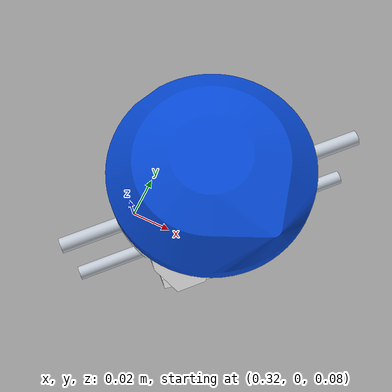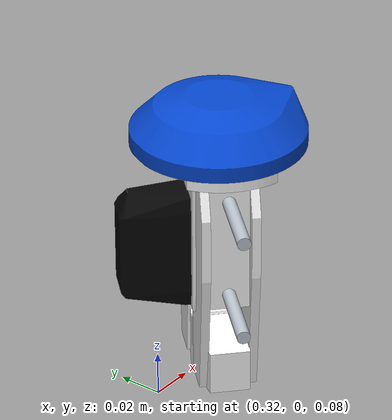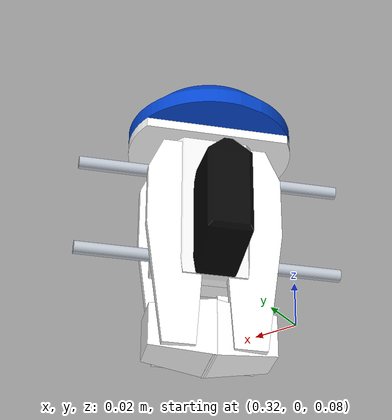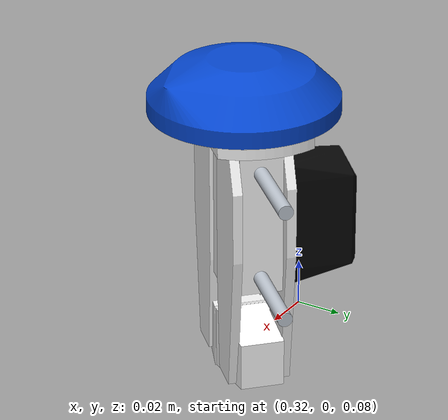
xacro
<?xml version="1.0"?>
<robot name="scara"
  xmlns:xacro="http://www.ros.org/wiki/xacro">
  <xacro:arg name="mode" default="mock"/>
  <xacro:arg name="description_share" default="$(find scara_description)"/>
  <xacro:arg name="controllers_file" default="$(find scara_bringup)/config/controllers.yaml"/>
  <xacro:property name="mode" value="$(arg mode)"/>
  <link name="world"/>
  <joint name="world_fixed" type="fixed">
    <parent link="world"/>
    <child link="base_link"/>
  </joint>
  <link name="base_link">

    <collision>
      <geometry>
        <mesh filename="file://$(arg description_share)/meshes/base_link_collision_000.stl"/>
      </geometry>
    </collision>
    <collision>
      <geometry>
        <mesh filename="file://$(arg description_share)/meshes/base_link_collision_001.stl"/>
      </geometry>
    </collision>
    <collision>
      <geometry>
        <mesh filename="file://$(arg description_share)/meshes/base_link_collision_081.stl"/>
      </geometry>
    </collision>
    <collision>
      <geometry>
        <mesh filename="file://$(arg description_share)/meshes/base_link_collision_082.stl"/>
      </geometry>
    </collision>
    <inertial>
      <origin xyz="-0.08500000000000003 2.0816681711721685e-16 0.03850000000000008"/>
      <mass value="1.5"/>
      <inertia ixx="0.0031911250000000797" ixy="0" ixz="0" iyy="0.011991125000000054" iyz="0" izz="0.013700000000000032"/>
    </inertial>
  </link>
  <link name="shoulder_link">

    <collision>
      <geometry>
        <mesh filename="file://$(arg description_share)/meshes/shoulder_link_collision_010.stl"/>
      </geometry>
    </collision>
    <collision>
      <geometry>
        <mesh filename="file://$(arg description_share)/meshes/shoulder_link_collision_011.stl"/>
      </geometry>
    </collision>
    <collision>
      <geometry>
        <mesh filename="file://$(arg description_share)/meshes/shoulder_link_collision_012.stl"/>
      </geometry>
    </collision>
    <collision>
      <geometry>
        <mesh filename="file://$(arg description_share)/meshes/shoulder_link_collision_013.stl"/>
      </geometry>
    </collision>
    <collision>
      <geometry>
        <mesh filename="file://$(arg description_share)/meshes/shoulder_link_collision_014.stl"/>
      </geometry>
    </collision>
    <collision>
      <geometry>
        <mesh filename="file://$(arg description_share)/meshes/shoulder_link_collision_015.stl"/>
      </geometry>
    </collision>
    <collision>
      <geometry>
        <mesh filename="file://$(arg description_share)/meshes/shoulder_link_collision_020.stl"/>
      </geometry>
    </collision>
    <collision>
      <geometry>
        <mesh filename="file://$(arg description_share)/meshes/shoulder_link_collision_027.stl"/>
      </geometry>
    </collision>
    <collision>
      <geometry>
        <mesh filename="file://$(arg description_share)/meshes/shoulder_link_collision_079.stl"/>
      </geometry>
    </collision>
    <collision>
      <geometry>
        <mesh filename="file://$(arg description_share)/meshes/shoulder_link_collision_080.stl"/>
      </geometry>
    </collision>
    <inertial>
      <origin xyz="-1.231653667943533e-15 -3.9170056087556304e-15 0.19100000000000006"/>
      <mass value="1.2"/>
      <inertia ixx="0.026640400000000355" ixy="0" ixz="0" iyy="0.02664040000000024" iyz="0" izz="0.0028800000000002227"/>
    </inertial>
  </link>
  <link name="arm1_link">

    <collision>
      <geometry>
        <mesh filename="file://$(arg description_share)/meshes/arm1_link_collision_028.stl"/>
      </geometry>
    </collision>
    <collision>
      <geometry>
        <mesh filename="file://$(arg description_share)/meshes/arm1_link_collision_029.stl"/>
      </geometry>
    </collision>
    <collision>
      <geometry>
        <mesh filename="file://$(arg description_share)/meshes/arm1_link_collision_038.stl"/>
      </geometry>
    </collision>
    <collision>
      <geometry>
        <mesh filename="file://$(arg description_share)/meshes/arm1_link_collision_077.stl"/>
      </geometry>
    </collision>
    <inertial>
      <origin xyz="0.10349999999999861 -4.524158825347513e-15 0.036500000000001614"/>
      <mass value="0.8"/>
      <inertia ixx="0.0015867303040828903" ixy="0" ixz="0" iyy="0.00775586666666669" iyz="0" izz="0.008088063637416243"/>
    </inertial>
  </link>
  <link name="arm2_link">

    <collision>
      <geometry>
        <mesh filename="file://$(arg description_share)/meshes/arm2_link_collision_032.stl"/>
      </geometry>
    </collision>
    <collision>
      <geometry>
        <mesh filename="file://$(arg description_share)/meshes/arm2_link_collision_045.stl"/>
      </geometry>
    </collision>
    <collision>
      <geometry>
        <mesh filename="file://$(arg description_share)/meshes/arm2_link_collision_046.stl"/>
      </geometry>
    </collision>
    <collision>
      <geometry>
        <mesh filename="file://$(arg description_share)/meshes/arm2_link_collision_048.stl"/>
      </geometry>
    </collision>
    <inertial>
      <origin xyz="0.07200000000000134 -3.629735401133871e-14 -0.006299999999999348"/>
      <mass value="0.45"/>
      <inertia ixx="0.0007103835000004254" ixy="0" ixz="0" iyy="0.002330383500000025" iyz="0" izz="0.002076300000000437"/>
    </inertial>
  </link>
  <link name="tool_link">
    <visual>
      <geometry>
        <mesh filename="file://$(arg description_share)/meshes/tool_link_collision_049.stl"/>
      </geometry>
      <material name="tool_link_white">
        <color rgba="0.02 0.28 0.82 1"/>
      </material>
    </visual>
    <visual>
      <geometry>
        <mesh filename="file://$(arg description_share)/meshes/tool_link_collision_058.stl"/>
      </geometry>
      <material name="tool_link_white_2">
        <color rgba="0.95 0.95 0.95 1"/>
      </material>
    </visual>
    <visual>
      <geometry>
        <mesh filename="file://$(arg description_share)/meshes/tool_link_collision_059.stl"/>
      </geometry>
      <material name="tool_link_white_3">
        <color rgba="0.02 0.02 0.02 1"/>
      </material>
    </visual>
    <collision>
      <geometry>
        <mesh filename="file://$(arg description_share)/meshes/tool_link_collision_049.stl"/>
      </geometry>
    </collision>
    <collision>
      <geometry>
        <mesh filename="file://$(arg description_share)/meshes/tool_link_collision_058.stl"/>
      </geometry>
    </collision>
    <collision>
      <geometry>
        <mesh filename="file://$(arg description_share)/meshes/tool_link_collision_059.stl"/>
      </geometry>
    </collision>
    <inertial>
      <origin xyz="2.949029909160572e-15 -5.304784389537076e-15 -0.03533070698027093"/>
      <mass value="0.35"/>
      <inertia ixx="0.0010352714832298565" ixy="0" ixz="0" iyy="0.0010119555516648687" iyz="0" izz="0.0005639303865941157"/>
    </inertial>
  </link>
  <joint name="shoulder_joint" type="revolute">
    <parent link="base_link"/>
    <child link="shoulder_link"/>
    <origin xyz="0 0 0.066"/>
    <axis xyz="0 0 1"/>
    <limit lower="-1.5707963267948966" upper="4.642575810304916" effort="20" velocity="2.4"/>
    <dynamics damping="0.1" friction="0.01"/>
  </joint>
  <joint name="z_joint" type="prismatic">
    <parent link="shoulder_link"/>
    <child link="arm1_link"/>
    <origin xyz="0 0 0.19761649586021549"/>
    <axis xyz="0 0 1"/>
    <limit lower="-0.05" upper="0.05" effort="150" velocity="0.16"/>
    <dynamics damping="0.1" friction="0.01"/>
  </joint>
  <joint name="elbow_joint" type="revolute">
    <parent link="arm1_link"/>
    <child link="arm2_link"/>
    <origin xyz="0.22799999999999893 0 -0.01899999999999869"/>
    <axis xyz="0 0 1"/>
    <limit lower="-2.6179938779914944" upper="2.6179938779914944" effort="20" velocity="3.0"/>
    <dynamics damping="0.1" friction="0.01"/>
  </joint>
  <joint name="wrist_joint" type="revolute">
    <parent link="arm2_link"/>
    <child link="tool_link"/>
    <origin xyz="0.13649999999995294 0 -0.0570000000000017"/>
    <axis xyz="0 0 1"/>
    <limit lower="-2.827433388230814" upper="2.827433388230814" effort="15" velocity="4.0"/>
    <dynamics damping="0.1" friction="0.01"/>
  </joint>
  <link name="tcp_link"/>
  <joint name="tcp_fixed" type="fixed">
    <parent link="tool_link"/>
    <child link="tcp_link"/>
    <origin xyz="0 0 -0.11506141396054323"/>
  </joint>
  <link name="gripper_base_link">
    <visual>
      <geometry>
        <mesh filename="file://$(arg description_share)/meshes/tool_link_collision_061.stl"/>
      </geometry>
      <material name="gripper_cad_white">
        <color rgba="1 1 1 1"/>
      </material>
    </visual>
    <visual>
      <geometry>
        <mesh filename="file://$(arg description_share)/meshes/tool_link_collision_063.stl"/>
      </geometry>
      <material name="gripper_cad_white_2">
        <color rgba="0.75 0.78 0.82 1"/>
      </material>
    </visual>
    <visual>
      <geometry>
        <mesh filename="file://$(arg description_share)/meshes/tool_link_collision_066.stl"/>
      </geometry>
      <material name="gripper_cad_white_3">
        <color rgba="0.75 0.78 0.82 1"/>
      </material>
    </visual>
    <visual>
      <geometry>
        <mesh filename="file://$(arg description_share)/meshes/tool_link_collision_076.stl"/>
      </geometry>
      <material name="gripper_cad_white_4">
        <color rgba="1 1 1 1"/>
      </material>
    </visual>
    <collision>
      <geometry>
        <mesh filename="file://$(arg description_share)/meshes/tool_link_collision_061.stl"/>
      </geometry>
    </collision>
    <collision>
      <geometry>
        <mesh filename="file://$(arg description_share)/meshes/tool_link_collision_063.stl"/>
      </geometry>
    </collision>
    <collision>
      <geometry>
        <mesh filename="file://$(arg description_share)/meshes/tool_link_collision_066.stl"/>
      </geometry>
    </collision>
    <collision>
      <geometry>
        <mesh filename="file://$(arg description_share)/meshes/tool_link_collision_076.stl"/>
      </geometry>
    </collision>
    <inertial>
      <mass value="0.10"/>
      <inertia ixx="0.000044" ixy="0" ixz="0" iyy="0.000023" iyz="0" izz="0.000061"/>
    </inertial>
  </link>
  <joint name="gripper_base_fixed" type="fixed">
    <parent link="tool_link"/>
    <child link="gripper_base_link"/>
    <origin xyz="0 0 0"/>
  </joint>

  <link name="left_finger_link">
    <visual>
      <origin xyz="0.032307 0.034136 0"/>
      <geometry>
        <mesh filename="file://$(arg description_share)/meshes/tool_link_collision_062.stl"/>
      </geometry>
      <material name="left_cad_white">
        <color rgba="1 1 1 1"/>
      </material>
    </visual>
    <visual>
      <origin xyz="0.032307 0.034136 0"/>
      <geometry>
        <mesh filename="file://$(arg description_share)/meshes/tool_link_collision_064.stl"/>
      </geometry>
      <material name="left_cad_white_2">
        <color rgba="1 1 1 1"/>
      </material>
    </visual>
    <visual>
      <origin xyz="0.032307 0.034136 0"/>
      <geometry>
        <mesh filename="file://$(arg description_share)/meshes/tool_link_collision_067.stl"/>
      </geometry>
      <material name="left_cad_white_3">
        <color rgba="1 1 1 1"/>
      </material>
    </visual>
    <visual>
      <origin xyz="0.032307 0.034136 0"/>
      <geometry>
        <mesh filename="file://$(arg description_share)/meshes/tool_link_collision_069.stl"/>
      </geometry>
      <material name="left_cad_white_4">
        <color rgba="1 1 1 1"/>
      </material>
    </visual>
    <collision>
      <origin xyz="0.032307 0.034136 0"/>
      <geometry>
        <mesh filename="file://$(arg description_share)/meshes/tool_link_collision_062.stl"/>
      </geometry>
    </collision>
    <collision>
      <origin xyz="0.032307 0.034136 0"/>
      <geometry>
        <mesh filename="file://$(arg description_share)/meshes/tool_link_collision_064.stl"/>
      </geometry>
    </collision>
    <collision>
      <origin xyz="0.032307 0.034136 0"/>
      <geometry>
        <mesh filename="file://$(arg description_share)/meshes/tool_link_collision_067.stl"/>
      </geometry>
    </collision>
    <collision>
      <origin xyz="0.032307 0.034136 0"/>
      <geometry>
        <mesh filename="file://$(arg description_share)/meshes/tool_link_collision_069.stl"/>
      </geometry>
    </collision>
    <inertial>
      <mass value="0.060"/>
      <inertia ixx="0.000020" ixy="0" ixz="0" iyy="0.000020" iyz="0" izz="0.000006"/>
    </inertial>
  </link>

  <link name="right_finger_link">
    <visual>
      <origin xyz="-0.032307 -0.034136 0"/>
      <geometry>
        <mesh filename="file://$(arg description_share)/meshes/tool_link_collision_065.stl"/>
      </geometry>
      <material name="right_cad_white">
        <color rgba="1 1 1 1"/>
      </material>
    </visual>
    <visual>
      <origin xyz="-0.032307 -0.034136 0"/>
      <geometry>
        <mesh filename="file://$(arg description_share)/meshes/tool_link_collision_068.stl"/>
      </geometry>
      <material name="right_cad_white_2">
        <color rgba="1 1 1 1"/>
      </material>
    </visual>
    <visual>
      <origin xyz="-0.032307 -0.034136 0"/>
      <geometry>
        <mesh filename="file://$(arg description_share)/meshes/tool_link_collision_070.stl"/>
      </geometry>
      <material name="right_cad_white_3">
        <color rgba="1 1 1 1"/>
      </material>
    </visual>
    <visual>
      <origin xyz="-0.032307 -0.034136 0"/>
      <geometry>
        <mesh filename="file://$(arg description_share)/meshes/tool_link_collision_071.stl"/>
      </geometry>
      <material name="right_cad_white_4">
        <color rgba="1 1 1 1"/>
      </material>
    </visual>
    <collision>
      <origin xyz="-0.032307 -0.034136 0"/>
      <geometry>
        <mesh filename="file://$(arg description_share)/meshes/tool_link_collision_065.stl"/>
      </geometry>
    </collision>
    <collision>
      <origin xyz="-0.032307 -0.034136 0"/>
      <geometry>
        <mesh filename="file://$(arg description_share)/meshes/tool_link_collision_068.stl"/>
      </geometry>
    </collision>
    <collision>
      <origin xyz="-0.032307 -0.034136 0"/>
      <geometry>
        <mesh filename="file://$(arg description_share)/meshes/tool_link_collision_070.stl"/>
      </geometry>
    </collision>
    <collision>
      <origin xyz="-0.032307 -0.034136 0"/>
      <geometry>
        <mesh filename="file://$(arg description_share)/meshes/tool_link_collision_071.stl"/>
      </geometry>
    </collision>
    <inertial>
      <mass value="0.060"/>
      <inertia ixx="0.000020" ixy="0" ixz="0" iyy="0.000020" iyz="0" izz="0.000006"/>
    </inertial>
  </link>

  <joint name="left_finger_joint" type="prismatic">
    <parent link="gripper_base_link"/>
    <child link="left_finger_link"/>
    <origin xyz="-0.015122 -0.015979 0"/>
    <axis xyz="-0.687379 -0.726299 0"/>
    <limit lower="0" upper="0.025" effort="40" velocity="0.16"/>
    <dynamics damping="0.2" friction="0.02"/>
  </joint>
  <joint name="right_finger_joint" type="prismatic">
    <parent link="gripper_base_link"/>
    <child link="right_finger_link"/>
    <origin xyz="0.015122 0.015979 0"/>
    <axis xyz="0.687379 0.726299 0"/>
    <limit lower="0" upper="0.025" effort="40" velocity="0.16"/>
    <dynamics damping="0.2" friction="0.02"/>
  </joint>
  <ros2_control name="ScaraSystem" type="system">
    <hardware>
      <xacro:if value="${mode == 'gazebo'}">
        <plugin>gazebo_ros2_control/GazeboSystem</plugin>
      </xacro:if>
      <xacro:if value="${mode == 'mock'}">
        <plugin>mock_components/GenericSystem</plugin>
      </xacro:if>
    </hardware>
    <joint name="shoulder_joint">
      <command_interface name="position"/>
      <state_interface name="position">
        <param name="initial_value">0.0</param>
      </state_interface>
      <state_interface name="velocity"/>
    </joint>
    <joint name="z_joint">
      <command_interface name="position"/>
      <state_interface name="position">
        <param name="initial_value">0.0</param>
      </state_interface>
      <state_interface name="velocity"/>
    </joint>
    <joint name="elbow_joint">
      <command_interface name="position"/>
      <state_interface name="position">
        <param name="initial_value">0.0</param>
      </state_interface>
      <state_interface name="velocity"/>
    </joint>
    <joint name="wrist_joint">
      <command_interface name="position"/>
      <state_interface name="position">
        <param name="initial_value">0.0</param>
      </state_interface>
      <state_interface name="velocity"/>
    </joint>
    <joint name="left_finger_joint">
      <command_interface name="position"/>
      <state_interface name="position">
        <param name="initial_value">0.025</param>
      </state_interface>
      <state_interface name="velocity"/>
    </joint>
    <joint name="right_finger_joint">
      <command_interface name="position"/>
      <state_interface name="position">
        <param name="initial_value">0.025</param>
      </state_interface>
      <state_interface name="velocity"/>
    </joint>
  </ros2_control>
  <xacro:if value="${mode == 'gazebo'}">
    <gazebo>
      <plugin name="gazebo_ros2_control" filename="libgazebo_ros2_control.so">
        <robot_param>robot_description</robot_param>
        <robot_param_node>robot_state_publisher</robot_param_node>
        <parameters>$(arg controllers_file)</parameters>
      </plugin>
    </gazebo>
    <gazebo reference="base_link">
      <selfCollide>false</selfCollide>

    </gazebo>
    <gazebo reference="shoulder_link">
      <selfCollide>false</selfCollide>
    </gazebo>
    <gazebo reference="arm1_link">
      <selfCollide>false</selfCollide>

    </gazebo>
    <gazebo reference="arm2_link">
      <selfCollide>false</selfCollide>

    </gazebo>
    <gazebo reference="tool_link">
      <selfCollide>false</selfCollide>

    </gazebo>
    <gazebo reference="gripper_base_link">
      <selfCollide>false</selfCollide>
      <material>Gazebo/White</material>
    </gazebo>
    <gazebo reference="left_finger_link">
      <selfCollide>false</selfCollide>
      <material>Gazebo/White</material>
    </gazebo>
    <gazebo reference="right_finger_link">
      <selfCollide>false</selfCollide>
      <material>Gazebo/White</material>
    </gazebo>
  </xacro:if>
  <xacro:include filename="$(arg description_share)/meshes/colored_visuals.xacro"/>
</robot>
